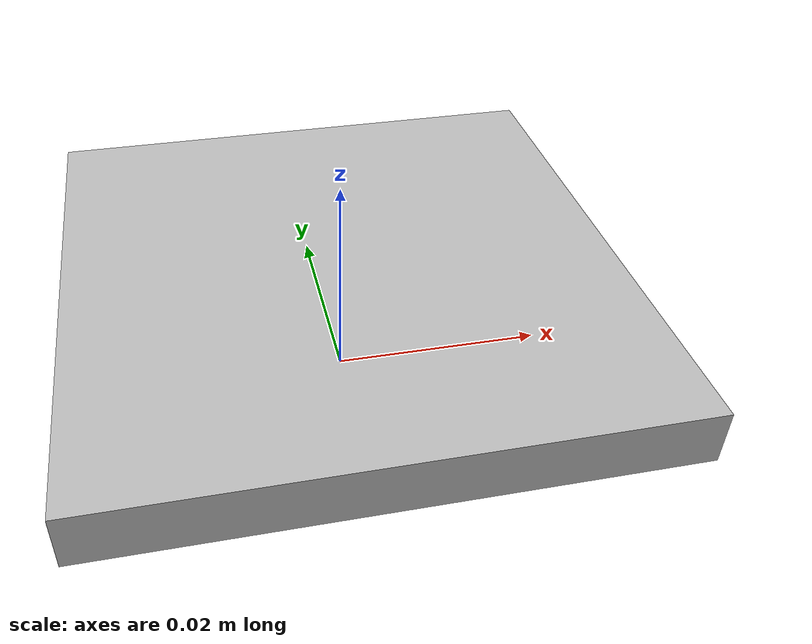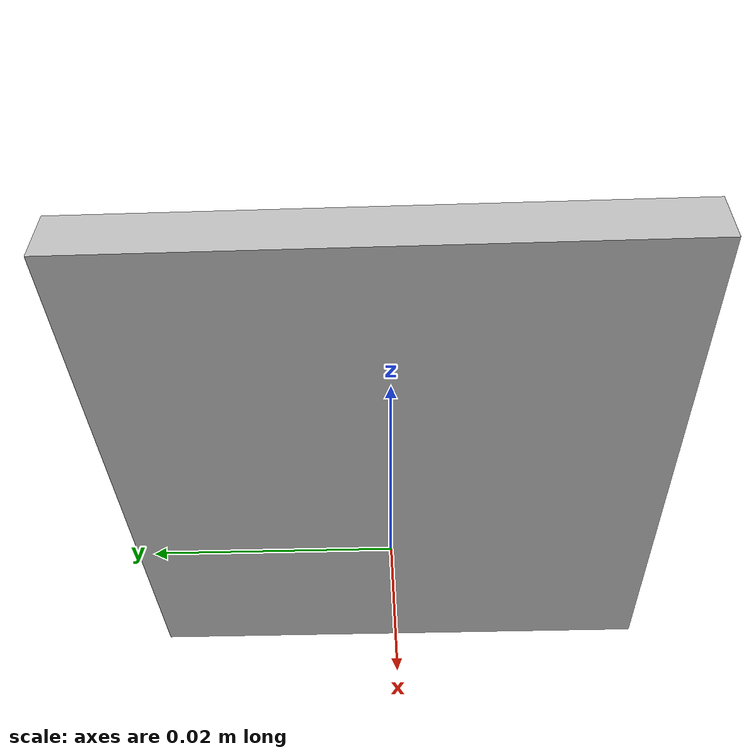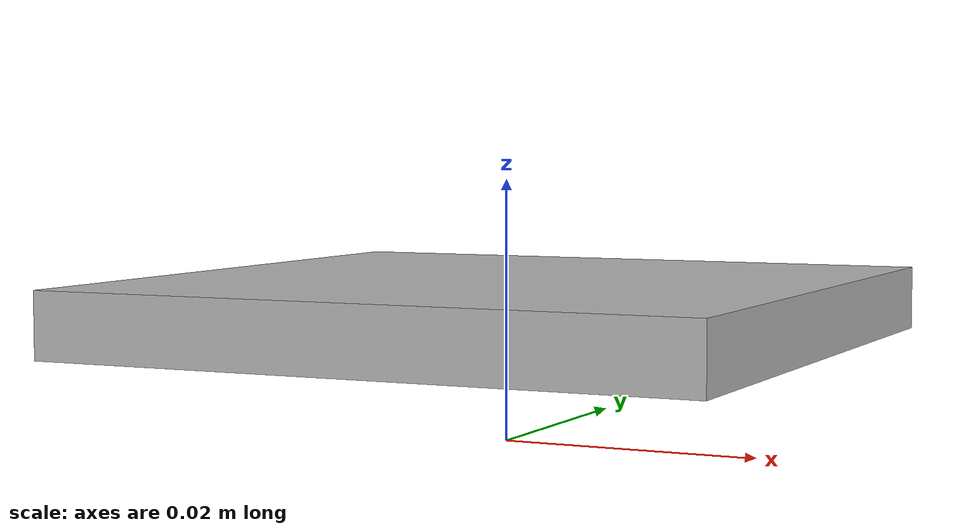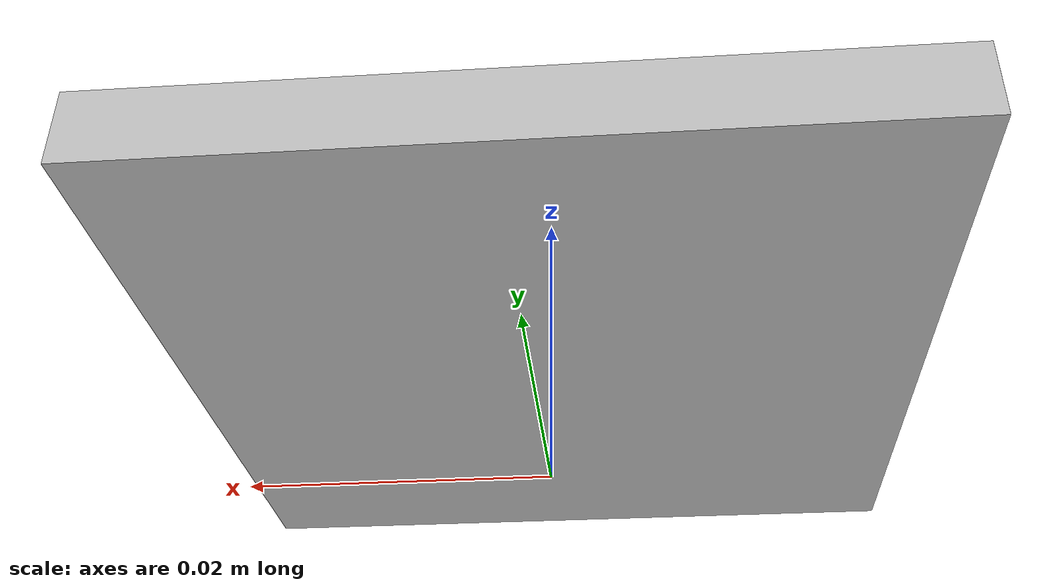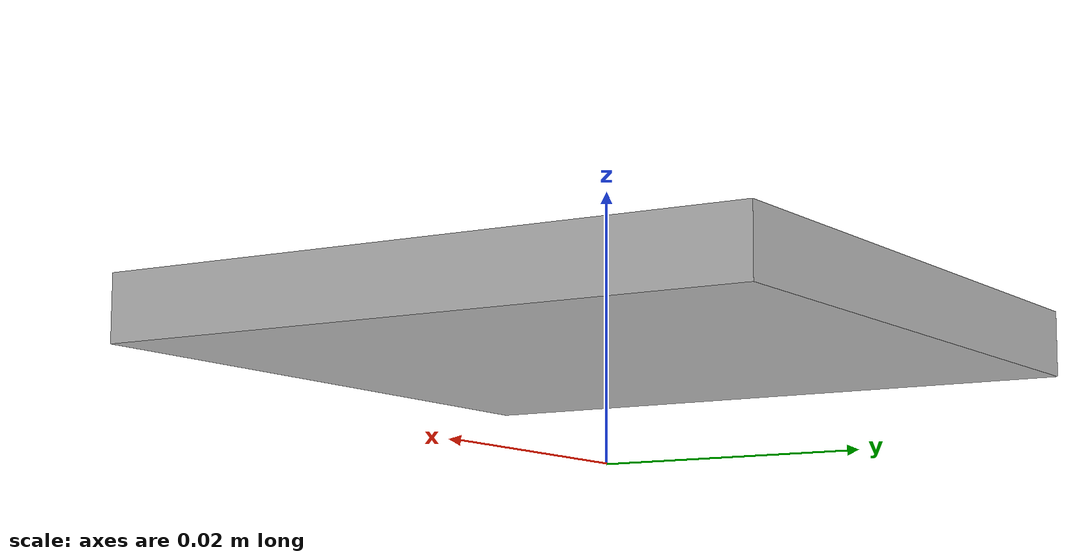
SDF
<?xml version="1.0" ?>
        <sdf version="1.5">
        <model name="DICT_4X4_50_s50_id36">
              <link name="Main">
                <pose>0 0 0 0 0 -1.570796327</pose>
                    <visual name="DICT_4X4_50_s50_id36_Visual">
                        <pose>0 0 0.01 0 0 0</pose>
                        <geometry>
                            <mesh>
                                <scale>1 1 1</scale>
                                <uri>DICT_4X4_50_s50_id36.obj</uri>
                            </mesh>
                        </geometry>
                    </visual>
                    <gravity>1</gravity>
                    <velocity_decay/>
                    <self_collide>0</self_collide>
              </link>
          </model></sdf>
